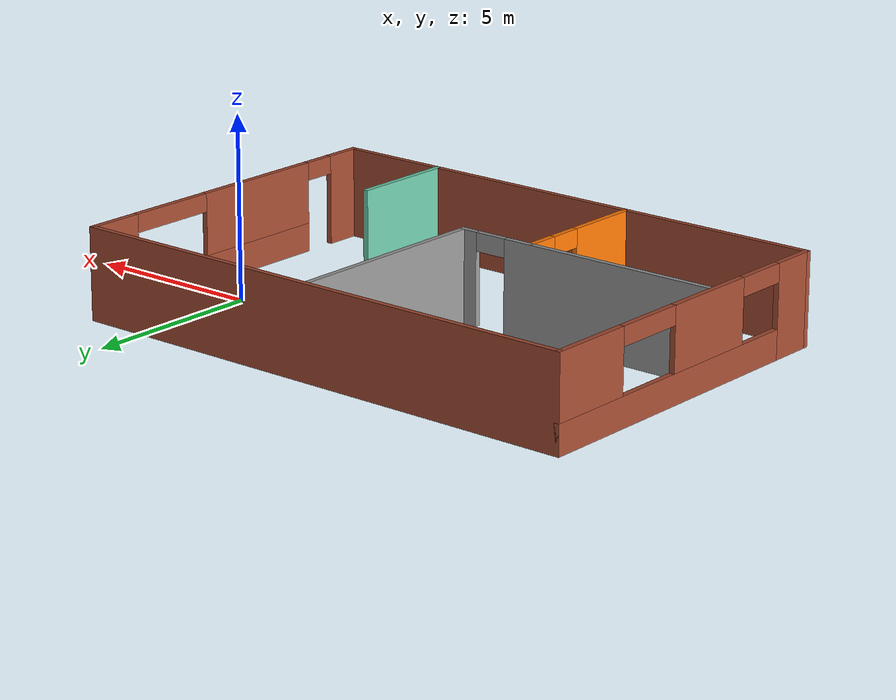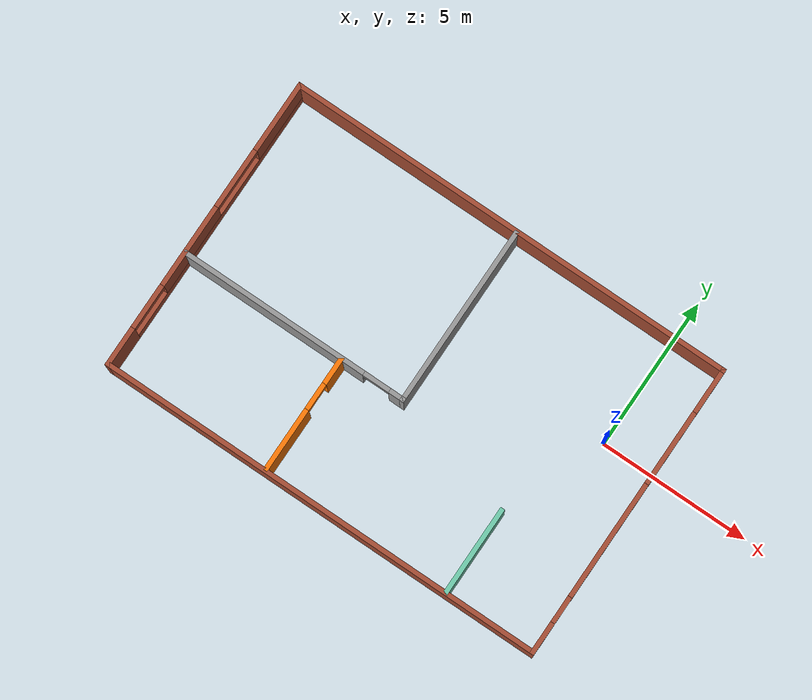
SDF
<?xml version='1.0'?>
<sdf version='1.6'>
  <model name='Building'>
    <pose frame=''>-5.71095 -1.40583 0 0 -0 0</pose>
    <link name='Wall_15'>
      <collision name='Wall_15_Collision'>
        <geometry>
          <box>
            <size>15 0.15 2.5</size>
          </box>
        </geometry>
        <pose frame=''>0 0 1.25 0 -0 0</pose>
      </collision>
      <visual name='Wall_15_Visual'>
        <pose frame=''>0 0 1.25 0 -0 0</pose>
        <geometry>
          <box>
            <size>15 0.15 2.5</size>
          </box>
        </geometry>
        <material>
          <script>
            <uri>file://media/materials/scripts/gazebo.material</uri>
            <name>Gazebo/Bricks</name>
          </script>
          <ambient>1 1 1 1</ambient>
        </material>
        <meta>
          <layer>0</layer>
        </meta>
      </visual>
      <pose frame=''>0 4.925 0 0 -0 0</pose>
    </link>
    <link name='Wall_16'>
      <pose frame=''>7.425 0 0 0 0 -1.5708</pose>
      <visual name='Wall_16_Visual_0'>
        <pose frame=''>-4.22001 0 1.25 0 -0 0</pose>
        <geometry>
          <box>
            <size>1.55997 0.15 2.5</size>
          </box>
        </geometry>
        <material>
          <script>
            <uri>file://media/materials/scripts/gazebo.material</uri>
            <name>Gazebo/Bricks</name>
          </script>
          <ambient>1 1 1 1</ambient>
        </material>
        <meta>
          <layer>0</layer>
        </meta>
      </visual>
      <collision name='Wall_16_Collision_0'>
        <geometry>
          <box>
            <size>1.55997 0.15 2.5</size>
          </box>
        </geometry>
        <pose frame=''>-4.22001 0 1.25 0 -0 0</pose>
      </collision>
      <visual name='Wall_16_Visual_1'>
        <pose frame=''>4.45188 0 1.25 0 -0 0</pose>
        <geometry>
          <box>
            <size>1.09624 0.15 2.5</size>
          </box>
        </geometry>
        <material>
          <script>
            <uri>file://media/materials/scripts/gazebo.material</uri>
            <name>Gazebo/Bricks</name>
          </script>
          <ambient>1 1 1 1</ambient>
        </material>
        <meta>
          <layer>0</layer>
        </meta>
      </visual>
      <collision name='Wall_16_Collision_1'>
        <geometry>
          <box>
            <size>1.09624 0.15 2.5</size>
          </box>
        </geometry>
        <pose frame=''>4.45188 0 1.25 0 -0 0</pose>
      </collision>
      <visual name='Wall_16_Visual_2'>
        <pose frame=''>-0.218135 0 0.4 0 -0 0</pose>
        <geometry>
          <box>
            <size>6.44378 0.15 0.8</size>
          </box>
        </geometry>
        <material>
          <script>
            <uri>file://media/materials/scripts/gazebo.material</uri>
            <name>Gazebo/Bricks</name>
          </script>
          <ambient>1 1 1 1</ambient>
        </material>
        <meta>
          <layer>0</layer>
        </meta>
      </visual>
      <collision name='Wall_16_Collision_2'>
        <geometry>
          <box>
            <size>6.44378 0.15 0.8</size>
          </box>
        </geometry>
        <pose frame=''>-0.218135 0 0.4 0 -0 0</pose>
      </collision>
      <visual name='Wall_16_Visual_3'>
        <pose frame=''>1.03187 0 1.65 0 -0 0</pose>
        <geometry>
          <box>
            <size>3.94378 0.15 1.7</size>
          </box>
        </geometry>
        <material>
          <script>
            <uri>file://media/materials/scripts/gazebo.material</uri>
            <name>Gazebo/Bricks</name>
          </script>
          <ambient>1 1 1 1</ambient>
        </material>
        <meta>
          <layer>0</layer>
        </meta>
      </visual>
      <collision name='Wall_16_Collision_3'>
        <geometry>
          <box>
            <size>3.94378 0.15 1.7</size>
          </box>
        </geometry>
        <pose frame=''>1.03187 0 1.65 0 -0 0</pose>
      </collision>
      <visual name='Wall_16_Visual_4'>
        <pose frame=''>3.45376 0 2.25 0 -0 0</pose>
        <geometry>
          <box>
            <size>0.9 0.15 0.5</size>
          </box>
        </geometry>
        <material>
          <script>
            <uri>file://media/materials/scripts/gazebo.material</uri>
            <name>Gazebo/Bricks</name>
          </script>
          <ambient>1 1 1 1</ambient>
        </material>
        <meta>
          <layer>0</layer>
        </meta>
      </visual>
      <collision name='Wall_16_Collision_4'>
        <geometry>
          <box>
            <size>0.9 0.15 0.5</size>
          </box>
        </geometry>
        <pose frame=''>3.45376 0 2.25 0 -0 0</pose>
      </collision>
      <visual name='Wall_16_Visual_5'>
        <pose frame=''>-2.19003 0 2.25 0 -0 0</pose>
        <geometry>
          <box>
            <size>2.5 0.15 0.5</size>
          </box>
        </geometry>
        <material>
          <script>
            <uri>file://media/materials/scripts/gazebo.material</uri>
            <name>Gazebo/Bricks</name>
          </script>
          <ambient>1 1 1 1</ambient>
        </material>
        <meta>
          <layer>0</layer>
        </meta>
      </visual>
      <collision name='Wall_16_Collision_5'>
        <geometry>
          <box>
            <size>2.5 0.15 0.5</size>
          </box>
        </geometry>
        <pose frame=''>-2.19003 0 2.25 0 -0 0</pose>
      </collision>
    </link>
    <link name='Wall_17'>
      <collision name='Wall_17_Collision'>
        <geometry>
          <box>
            <size>15 0.15 2.5</size>
          </box>
        </geometry>
        <pose frame=''>0 0 1.25 0 -0 0</pose>
      </collision>
      <visual name='Wall_17_Visual'>
        <pose frame=''>0 0 1.25 0 -0 0</pose>
        <geometry>
          <box>
            <size>15 0.15 2.5</size>
          </box>
        </geometry>
        <material>
          <script>
            <uri>file://media/materials/scripts/gazebo.material</uri>
            <name>Gazebo/Bricks</name>
          </script>
          <ambient>1 1 1 1</ambient>
        </material>
        <meta>
          <layer>0</layer>
        </meta>
      </visual>
      <pose frame=''>0 -4.925 0 0 -0 3.14159</pose>
    </link>
    <link name='Wall_18'>
      <pose frame=''>-7.425 0 0 0 -0 1.5708</pose>
      <visual name='Wall_18_Visual_0'>
        <pose frame=''>-4.32724 0 1.25 0 -0 0</pose>
        <geometry>
          <box>
            <size>1.34552 0.15 2.5</size>
          </box>
        </geometry>
        <material>
          <script>
            <uri>file://media/materials/scripts/gazebo.material</uri>
            <name>Gazebo/Bricks</name>
          </script>
          <ambient>1 1 1 1</ambient>
        </material>
        <meta>
          <layer>0</layer>
        </meta>
      </visual>
      <collision name='Wall_18_Collision_0'>
        <geometry>
          <box>
            <size>1.34552 0.15 2.5</size>
          </box>
        </geometry>
        <pose frame=''>-4.32724 0 1.25 0 -0 0</pose>
      </collision>
      <visual name='Wall_18_Visual_1'>
        <pose frame=''>0.672759 0 0.4 0 -0 0</pose>
        <geometry>
          <box>
            <size>8.65448 0.15 0.8</size>
          </box>
        </geometry>
        <material>
          <script>
            <uri>file://media/materials/scripts/gazebo.material</uri>
            <name>Gazebo/Bricks</name>
          </script>
          <ambient>1 1 1 1</ambient>
        </material>
        <meta>
          <layer>0</layer>
        </meta>
      </visual>
      <collision name='Wall_18_Collision_1'>
        <geometry>
          <box>
            <size>8.65448 0.15 0.8</size>
          </box>
        </geometry>
        <pose frame=''>0.672759 0 0.4 0 -0 0</pose>
      </collision>
      <visual name='Wall_18_Visual_2'>
        <pose frame=''>-0.765256 0 1.65 0 -0 0</pose>
        <geometry>
          <box>
            <size>2.77845 0.15 1.7</size>
          </box>
        </geometry>
        <material>
          <script>
            <uri>file://media/materials/scripts/gazebo.material</uri>
            <name>Gazebo/Bricks</name>
          </script>
          <ambient>1 1 1 1</ambient>
        </material>
        <meta>
          <layer>0</layer>
        </meta>
      </visual>
      <collision name='Wall_18_Collision_2'>
        <geometry>
          <box>
            <size>2.77845 0.15 1.7</size>
          </box>
        </geometry>
        <pose frame=''>-0.765256 0 1.65 0 -0 0</pose>
      </collision>
      <visual name='Wall_18_Visual_3'>
        <pose frame=''>3.81198 0 1.65 0 -0 0</pose>
        <geometry>
          <box>
            <size>2.37603 0.15 1.7</size>
          </box>
        </geometry>
        <material>
          <script>
            <uri>file://media/materials/scripts/gazebo.material</uri>
            <name>Gazebo/Bricks</name>
          </script>
          <ambient>1 1 1 1</ambient>
        </material>
        <meta>
          <layer>0</layer>
        </meta>
      </visual>
      <collision name='Wall_18_Collision_3'>
        <geometry>
          <box>
            <size>2.37603 0.15 1.7</size>
          </box>
        </geometry>
        <pose frame=''>3.81198 0 1.65 0 -0 0</pose>
      </collision>
      <visual name='Wall_18_Visual_4'>
        <pose frame=''>-2.90448 0 2.25 0 -0 0</pose>
        <geometry>
          <box>
            <size>1.5 0.15 0.5</size>
          </box>
        </geometry>
        <material>
          <script>
            <uri>file://media/materials/scripts/gazebo.material</uri>
            <name>Gazebo/Bricks</name>
          </script>
          <ambient>1 1 1 1</ambient>
        </material>
        <meta>
          <layer>0</layer>
        </meta>
      </visual>
      <collision name='Wall_18_Collision_4'>
        <geometry>
          <box>
            <size>1.5 0.15 0.5</size>
          </box>
        </geometry>
        <pose frame=''>-2.90448 0 2.25 0 -0 0</pose>
      </collision>
      <visual name='Wall_18_Visual_5'>
        <pose frame=''>1.62397 0 2.25 0 -0 0</pose>
        <geometry>
          <box>
            <size>2 0.15 0.5</size>
          </box>
        </geometry>
        <material>
          <script>
            <uri>file://media/materials/scripts/gazebo.material</uri>
            <name>Gazebo/Bricks</name>
          </script>
          <ambient>1 1 1 1</ambient>
        </material>
        <meta>
          <layer>0</layer>
        </meta>
      </visual>
      <collision name='Wall_18_Collision_5'>
        <geometry>
          <box>
            <size>2 0.15 0.5</size>
          </box>
        </geometry>
        <pose frame=''>1.62397 0 2.25 0 -0 0</pose>
      </collision>
    </link>
    <link name='Wall_23'>
      <pose frame=''>-3.58227 -0.985767 0 0 -0 0</pose>
      <visual name='Wall_23_Visual_0'>
        <pose frame=''>-0.718243 0 1.25 0 -0 0</pose>
        <geometry>
          <box>
            <size>6.31351 0.15 2.5</size>
          </box>
        </geometry>
        <material>
          <script>
            <uri>file://media/materials/scripts/gazebo.material</uri>
            <name>Gazebo/Grey</name>
          </script>
          <ambient>1 1 1 1</ambient>
        </material>
        <meta>
          <layer>0</layer>
        </meta>
      </visual>
      <collision name='Wall_23_Collision_0'>
        <geometry>
          <box>
            <size>6.31351 0.15 2.5</size>
          </box>
        </geometry>
        <pose frame=''>-0.718243 0 1.25 0 -0 0</pose>
      </collision>
      <visual name='Wall_23_Visual_1'>
        <pose frame=''>3.60676 0 1.25 0 -0 0</pose>
        <geometry>
          <box>
            <size>0.536487 0.15 2.5</size>
          </box>
        </geometry>
        <material>
          <script>
            <uri>file://media/materials/scripts/gazebo.material</uri>
            <name>Gazebo/Grey</name>
          </script>
          <ambient>1 1 1 1</ambient>
        </material>
        <meta>
          <layer>0</layer>
        </meta>
      </visual>
      <collision name='Wall_23_Collision_1'>
        <geometry>
          <box>
            <size>0.536487 0.15 2.5</size>
          </box>
        </geometry>
        <pose frame=''>3.60676 0 1.25 0 -0 0</pose>
      </collision>
      <visual name='Wall_23_Visual_2'>
        <pose frame=''>2.88851 0 2.25 0 -0 0</pose>
        <geometry>
          <box>
            <size>0.9 0.15 0.5</size>
          </box>
        </geometry>
        <material>
          <script>
            <uri>file://media/materials/scripts/gazebo.material</uri>
            <name>Gazebo/Grey</name>
          </script>
          <ambient>1 1 1 1</ambient>
        </material>
        <meta>
          <layer>0</layer>
        </meta>
      </visual>
      <collision name='Wall_23_Collision_2'>
        <geometry>
          <box>
            <size>0.9 0.15 0.5</size>
          </box>
        </geometry>
        <pose frame=''>2.88851 0 2.25 0 -0 0</pose>
      </collision>
    </link>
    <link name='Wall_24'>
      <collision name='Wall_24_Collision'>
        <geometry>
          <box>
            <size>6 0.15 2.5</size>
          </box>
        </geometry>
        <pose frame=''>0 0 1.25 0 -0 0</pose>
      </collision>
      <visual name='Wall_24_Visual'>
        <pose frame=''>0 0 1.25 0 -0 0</pose>
        <geometry>
          <box>
            <size>6 0.15 2.5</size>
          </box>
        </geometry>
        <material>
          <script>
            <uri>file://media/materials/scripts/gazebo.material</uri>
            <name>Gazebo/Grey</name>
          </script>
          <ambient>1 1 1 1</ambient>
        </material>
        <meta>
          <layer>0</layer>
        </meta>
      </visual>
      <pose frame=''>0.217727 1.93923 0 0 -0 1.5708</pose>
    </link>
    <link name='Wall_26'>
      <pose frame=''>-1.91826 -2.92501 0 0 0 -1.5708</pose>
      <visual name='Wall_26_Visual_0'>
        <pose frame=''>-1.5205 0 1.25 0 -0 0</pose>
        <geometry>
          <box>
            <size>0.959 0.15 2.5</size>
          </box>
        </geometry>
        <material>
          <script>
            <uri>file://media/materials/scripts/gazebo.material</uri>
            <name>Gazebo/Grey</name>
          </script>
          <ambient>0.996078 0.47451 0.0196078 1</ambient>
        </material>
        <meta>
          <layer>0</layer>
        </meta>
      </visual>
      <collision name='Wall_26_Collision_0'>
        <geometry>
          <box>
            <size>0.959 0.15 2.5</size>
          </box>
        </geometry>
        <pose frame=''>-1.5205 0 1.25 0 -0 0</pose>
      </collision>
      <visual name='Wall_26_Visual_1'>
        <pose frame=''>0.9295 0 1.25 0 -0 0</pose>
        <geometry>
          <box>
            <size>2.141 0.15 2.5</size>
          </box>
        </geometry>
        <material>
          <script>
            <uri>file://media/materials/scripts/gazebo.material</uri>
            <name>Gazebo/Grey</name>
          </script>
          <ambient>0.996078 0.47451 0.0196078 1</ambient>
        </material>
        <meta>
          <layer>0</layer>
        </meta>
      </visual>
      <collision name='Wall_26_Collision_1'>
        <geometry>
          <box>
            <size>2.141 0.15 2.5</size>
          </box>
        </geometry>
        <pose frame=''>0.9295 0 1.25 0 -0 0</pose>
      </collision>
      <visual name='Wall_26_Visual_2'>
        <pose frame=''>-0.591 0 2.25 0 -0 0</pose>
        <geometry>
          <box>
            <size>0.9 0.15 0.5</size>
          </box>
        </geometry>
        <material>
          <script>
            <uri>file://media/materials/scripts/gazebo.material</uri>
            <name>Gazebo/Grey</name>
          </script>
          <ambient>0.996078 0.47451 0.0196078 1</ambient>
        </material>
        <meta>
          <layer>0</layer>
        </meta>
      </visual>
      <collision name='Wall_26_Collision_2'>
        <geometry>
          <box>
            <size>0.9 0.15 0.5</size>
          </box>
        </geometry>
        <pose frame=''>-0.591 0 2.25 0 -0 0</pose>
      </collision>
    </link>
    <link name='Wall_28'>
      <collision name='Wall_28_Collision'>
        <geometry>
          <box>
            <size>3 0.15 2.5</size>
          </box>
        </geometry>
        <pose frame=''>0 0 1.25 0 -0 0</pose>
      </collision>
      <visual name='Wall_28_Visual'>
        <pose frame=''>0 0 1.25 0 -0 0</pose>
        <geometry>
          <box>
            <size>3 0.15 2.5</size>
          </box>
        </geometry>
        <material>
          <script>
            <uri>file://media/materials/scripts/gazebo.material</uri>
            <name>Gazebo/Grey</name>
          </script>
          <ambient>0.435294 0.796078 0.67451 1</ambient>
        </material>
        <meta>
          <layer>0</layer>
        </meta>
      </visual>
      <pose frame=''>4.38813 -3.48002 0 0 0 -1.5708</pose>
    </link>
    <static>1</static>
  </model>
</sdf>
